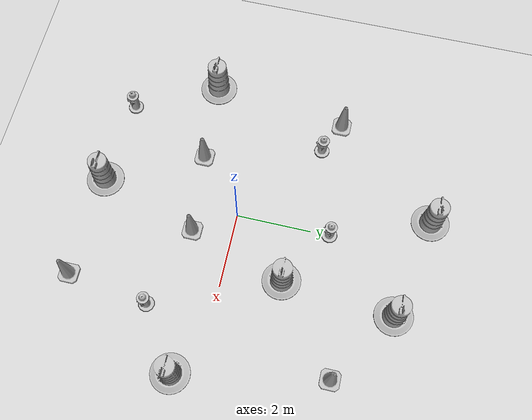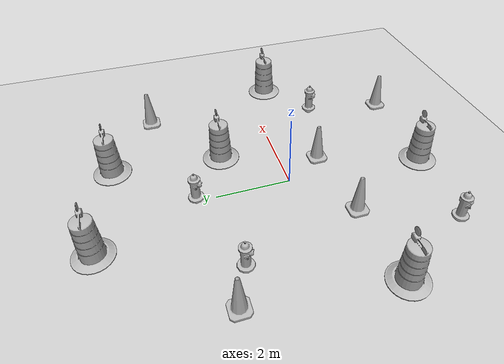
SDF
<sdf version="1.7">
 <world name="default">
  <light name="sun" type="directional">
   <pose>0 0 10 0 -0 0</pose>
   <diffuse>0.8 0.8 0.8 1</diffuse>
   <specular>0.2 0.2 0.2 1</specular>
   <attenuation>
    <range>1000</range>
    <constant>0.9</constant>
    <linear>0.01</linear>
    <quadratic>0.001</quadratic>
   </attenuation>
   <direction>-0.5 0.1 -0.9</direction>
   <spot><inner_angle>0</inner_angle><outer_angle>0</outer_angle><falloff>0</falloff></spot>
  </light>
  <model name="ground_plane">
   <static>1</static>
   <link name="link">
    <collision name="collision">
     <geometry><plane><normal>0 0 1</normal><size>100 100</size></plane></geometry>
     <surface>
      <contact><collide_bitmask>65535</collide_bitmask></contact>
      <friction><ode><mu>100</mu><mu2>50</mu2></ode></friction>
     </surface>
    </collision>
    <visual name="visual">
     <cast_shadows>0</cast_shadows>
     <geometry><plane><normal>0 0 1</normal><size>100 100</size></plane></geometry>
     <material>
      <script><uri>file://media/materials/scripts/gazebo.material</uri><name>Gazebo/Grey</name></script>
     </material>
    </visual>
   </link>
  </model>
  <gravity>0 0 -9.8</gravity>
  <magnetic_field>6e-06 2.3e-05 -4.2e-05</magnetic_field>
  <atmosphere type="adiabatic"/>
  <physics type="ode">
   <max_step_size>0.001</max_step_size>
   <real_time_factor>1</real_time_factor>
   <real_time_update_rate>1000</real_time_update_rate>
  </physics>
  <scene><ambient>0.4 0.4 0.4 1</ambient><background>0.7 0.7 0.7 1</background><shadows>1</shadows></scene>
  <audio><device>default</device></audio>
  <spherical_coordinates>
   <surface_model>EARTH_WGS84</surface_model>
   <latitude_deg>0</latitude_deg>
   <longitude_deg>0</longitude_deg>
   <elevation>0</elevation>
   <heading_deg>0</heading_deg>
  </spherical_coordinates>
  <model name="Construction Barrel">
   <link name="link">
    <inertial>
     <pose>0 0 0.4 0 -0 0</pose>
     <mass>500</mass>
     <inertia><ixx>51.2096</ixx><iyy>51.2096</iyy><izz>25</izz><ixy>0</ixy><ixz>0</ixz><iyz>0</iyz></inertia>
    </inertial>
    <collision name="collision">
     <geometry><mesh><uri>model://construction_barrel/meshes/construction_barrel.dae</uri></mesh></geometry>
    </collision>
    <visual name="visual">
     <geometry><mesh><uri>model://construction_barrel/meshes/construction_barrel.dae</uri></mesh></geometry>
    </visual>
   </link>
   <pose>-3.69303 -1.42625 0 0 0 -2.7e-05</pose>
  </model>
  <model name="Construction Barrel_0">
   <link name="link">
    <inertial>
     <pose>0 0 0.4 0 -0 0</pose>
     <mass>500</mass>
     <inertia><ixx>51.2096</ixx><iyy>51.2096</iyy><izz>25</izz><ixy>0</ixy><ixz>0</ixz><iyz>0</iyz></inertia>
    </inertial>
    <collision name="collision">
     <geometry><mesh><uri>model://construction_barrel/meshes/construction_barrel.dae</uri></mesh></geometry>
    </collision>
    <visual name="visual">
     <geometry><mesh><uri>model://construction_barrel/meshes/construction_barrel.dae</uri></mesh></geometry>
    </visual>
   </link>
   <pose>-0.948629 5.05996 0 0 0 -2.6e-05</pose>
  </model>
  <model name="Construction Barrel_1">
   <link name="link">
    <inertial>
     <pose>0 0 0.4 0 -0 0</pose>
     <mass>500</mass>
     <inertia><ixx>51.2096</ixx><iyy>51.2096</iyy><izz>25</izz><ixy>0</ixy><ixz>0</ixz><iyz>0</iyz></inertia>
    </inertial>
    <collision name="collision">
     <geometry><mesh><uri>model://construction_barrel/meshes/construction_barrel.dae</uri></mesh></geometry>
    </collision>
    <visual name="visual">
     <geometry><mesh><uri>model://construction_barrel/meshes/construction_barrel.dae</uri></mesh></geometry>
    </visual>
   </link>
   <pose>-0.247366 -3.76124 -0 0 -0 -2.8e-05</pose>
  </model>
  <model name="fire_hydrant">
   <static>1</static>
   <link name="link">
    <collision name="collision">
     <geometry><mesh><uri>model://fire_hydrant/meshes/fire_hydrant.dae</uri></mesh></geometry>
    </collision>
    <visual name="visual">
     <geometry><mesh><uri>model://fire_hydrant/meshes/fire_hydrant.dae</uri></mesh></geometry>
    </visual>
   </link>
   <pose>0.038257 2.49942 0 0 -0 0</pose>
  </model>
  <model name="fire_hydrant_0">
   <static>1</static>
   <link name="link">
    <collision name="collision">
     <geometry><mesh><uri>model://fire_hydrant/meshes/fire_hydrant.dae</uri></mesh></geometry>
    </collision>
    <visual name="visual">
     <geometry><mesh><uri>model://fire_hydrant/meshes/fire_hydrant.dae</uri></mesh></geometry>
    </visual>
   </link>
   <pose>-2.33457 1.83968 0 0 -0 0</pose>
  </model>
  <model name="Construction Cone">
   <link name="link">
    <collision name="collision">
     <geometry>
      <mesh><scale>10 10 10</scale><uri>model://construction_cone/meshes/construction_cone.dae</uri></mesh>
     </geometry>
    </collision>
    <visual name="visual">
     <geometry>
      <mesh><scale>10 10 10</scale><uri>model://construction_cone/meshes/construction_cone.dae</uri></mesh>
     </geometry>
    </visual>
    <inertial>
     <inertia><ixx>1</ixx><ixy>0</ixy><ixz>0</ixz><iyy>1</iyy><iyz>0</iyz><izz>1</izz></inertia>
     <mass>1</mass>
    </inertial>
   </link>
   <pose>-1.49064 -1.28375 -4e-06 4e-06 -1e-06 0</pose>
  </model>
  <model name="Construction Barrel_2">
   <link name="link">
    <inertial>
     <pose>0 0 0.4 0 -0 0</pose>
     <mass>500</mass>
     <inertia><ixx>51.2096</ixx><iyy>51.2096</iyy><izz>25</izz><ixy>0</ixy><ixz>0</ixz><iyz>0</iyz></inertia>
    </inertial>
    <collision name="collision">
     <geometry><mesh><uri>model://construction_barrel/meshes/construction_barrel.dae</uri></mesh></geometry>
    </collision>
    <visual name="visual">
     <geometry><mesh><uri>model://construction_barrel/meshes/construction_barrel.dae</uri></mesh></geometry>
    </visual>
   </link>
   <pose>4.40439 -0.642612 -0 0 -0 -1.6e-05</pose>
  </model>
  <model name="Construction Cone_0">
   <link name="link">
    <collision name="collision">
     <geometry>
      <mesh><scale>10 10 10</scale><uri>model://construction_cone/meshes/construction_cone.dae</uri></mesh>
     </geometry>
    </collision>
    <visual name="visual">
     <geometry>
      <mesh><scale>10 10 10</scale><uri>model://construction_cone/meshes/construction_cone.dae</uri></mesh>
     </geometry>
    </visual>
    <inertial>
     <inertia><ixx>1</ixx><ixy>0</ixy><ixz>0</ixz><iyy>1</iyy><iyz>0</iyz><izz>1</izz></inertia>
     <mass>1</mass>
    </inertial>
   </link>
   <pose>3.68302 3.2234 -3e-06 -3e-06 -1e-06 -0</pose>
  </model>
  <model name="fire_hydrant_1">
   <static>1</static>
   <link name="link">
    <collision name="collision">
     <geometry><mesh><uri>model://fire_hydrant/meshes/fire_hydrant.dae</uri></mesh></geometry>
    </collision>
    <visual name="visual">
     <geometry><mesh><uri>model://fire_hydrant/meshes/fire_hydrant.dae</uri></mesh></geometry>
    </visual>
   </link>
   <pose>-2.52198 -3.54253 0 0 -0 0</pose>
  </model>
  <model name="fire_hydrant_1_clone">
   <static>1</static>
   <link name="link">
    <collision name="collision">
     <geometry><mesh><uri>model://fire_hydrant/meshes/fire_hydrant.dae</uri></mesh></geometry>
    </collision>
    <visual name="visual">
     <geometry><mesh><uri>model://fire_hydrant/meshes/fire_hydrant.dae</uri></mesh></geometry>
    </visual>
   </link>
   <pose>2.87705 -1.6743 0 0 -0 0</pose>
  </model>
  <model name="Construction Barrel_clone">
   <link name="link">
    <inertial>
     <pose>0 0 0.4 0 -0 0</pose>
     <mass>500</mass>
     <inertia><ixx>51.2096</ixx><iyy>51.2096</iyy><izz>25</izz><ixy>0</ixy><ixz>0</ixz><iyz>0</iyz></inertia>
    </inertial>
    <collision name="collision">
     <geometry><mesh><uri>model://construction_barrel/meshes/construction_barrel.dae</uri></mesh></geometry>
    </collision>
    <visual name="visual">
     <geometry><mesh><uri>model://construction_barrel/meshes/construction_barrel.dae</uri></mesh></geometry>
    </visual>
   </link>
   <pose>1.48904 1.52906 -4e-06 -5e-06 -7e-06 -2.6e-05</pose>
  </model>
  <model name="Construction Cone_clone">
   <link name="link">
    <collision name="collision">
     <geometry>
      <mesh><scale>10 10 10</scale><uri>model://construction_cone/meshes/construction_cone.dae</uri></mesh>
     </geometry>
    </collision>
    <visual name="visual">
     <geometry>
      <mesh><scale>10 10 10</scale><uri>model://construction_cone/meshes/construction_cone.dae</uri></mesh>
     </geometry>
    </visual>
    <inertial>
     <inertia><ixx>1</ixx><ixy>0</ixy><ixz>0</ixz><iyy>1</iyy><iyz>0</iyz><izz>1</izz></inertia>
     <mass>1</mass>
    </inertial>
   </link>
   <pose>-3.25475 2.2364 -0 0 -0 0</pose>
  </model>
  <model name="Construction Cone_clone_0">
   <link name="link">
    <collision name="collision">
     <geometry>
      <mesh><scale>10 10 10</scale><uri>model://construction_cone/meshes/construction_cone.dae</uri></mesh>
     </geometry>
    </collision>
    <visual name="visual">
     <geometry>
      <mesh><scale>10 10 10</scale><uri>model://construction_cone/meshes/construction_cone.dae</uri></mesh>
     </geometry>
    </visual>
    <inertial>
     <inertia><ixx>1</ixx><ixy>0</ixy><ixz>0</ixz><iyy>1</iyy><iyz>0</iyz><izz>1</izz></inertia>
     <mass>1</mass>
    </inertial>
   </link>
   <pose>2.52244 -3.87655 -0 0 -0 0</pose>
  </model>
  <model name="Construction Cone_clone_1">
   <link name="link">
    <collision name="collision">
     <geometry>
      <mesh><scale>10 10 10</scale><uri>model://construction_cone/meshes/construction_cone.dae</uri></mesh>
     </geometry>
    </collision>
    <visual name="visual">
     <geometry>
      <mesh><scale>10 10 10</scale><uri>model://construction_cone/meshes/construction_cone.dae</uri></mesh>
     </geometry>
    </visual>
    <inertial>
     <inertia><ixx>1</ixx><ixy>0</ixy><ixz>0</ixz><iyy>1</iyy><iyz>0</iyz><izz>1</izz></inertia>
     <mass>1</mass>
    </inertial>
   </link>
   <pose>0.666306 -1.06573 -1e-05 -1e-06 0 0</pose>
  </model>
  <model name="Construction Barrel_clone_clone">
   <link name="link">
    <inertial>
     <pose>0 0 0.4 0 -0 0</pose>
     <mass>500</mass>
     <inertia><ixx>51.2096</ixx><iyy>51.2096</iyy><izz>25</izz><ixy>0</ixy><ixz>0</ixz><iyz>0</iyz></inertia>
    </inertial>
    <collision name="collision">
     <geometry><mesh><uri>model://construction_barrel/meshes/construction_barrel.dae</uri></mesh></geometry>
    </collision>
    <visual name="visual">
     <geometry><mesh><uri>model://construction_barrel/meshes/construction_barrel.dae</uri></mesh></geometry>
    </visual>
   </link>
   <pose>1.76356 4.4977 -4e-06 -5e-06 -7e-06 -2.6e-05</pose>
  </model>
 </world>
</sdf>
